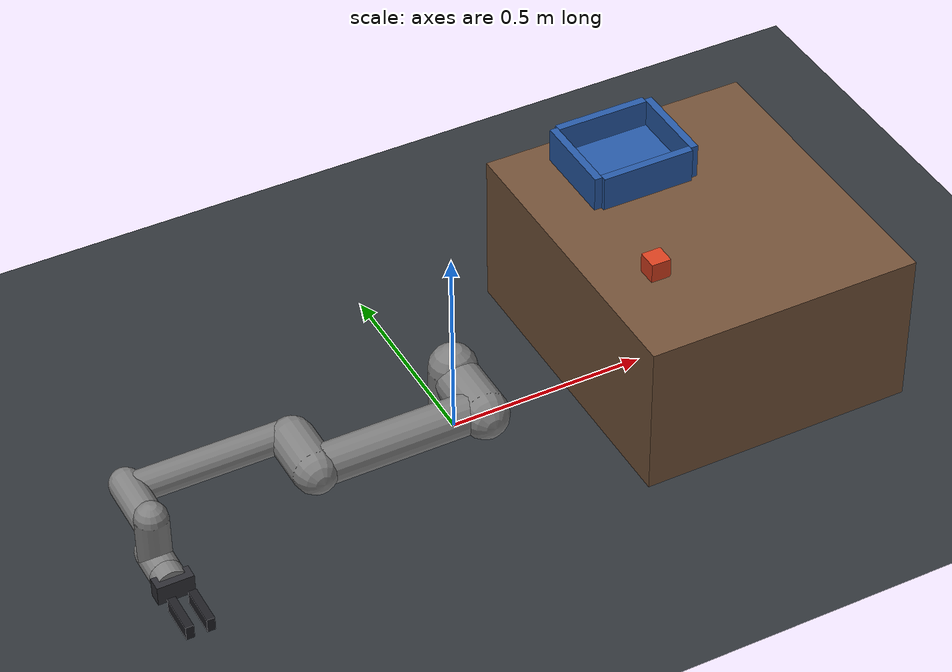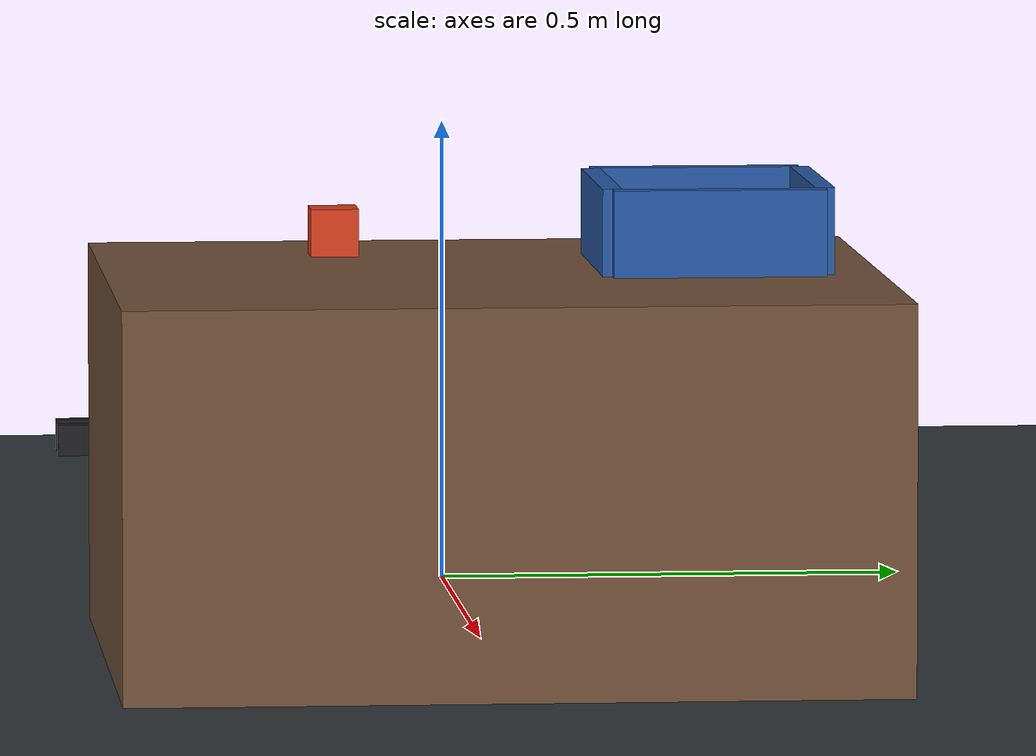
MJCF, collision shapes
<mujoco model="ACT Lab UR5e cube-to-tray task">
  <include file="ur5e.xml"/>

  <visual>
    <headlight diffuse="0.6 0.6 0.6" ambient="0.3 0.3 0.3" specular="0.1 0.1 0.1"/>
    <global azimuth="135" elevation="-25"/>
  </visual>

  <asset>
    <texture name="floor_grid" type="2d" builtin="checker" width="256" height="256"
      rgb1="0.16 0.18 0.2" rgb2="0.22 0.24 0.26"/>
    <material name="floor_material" texture="floor_grid" texrepeat="4 4" texuniform="true"/>
    <material name="table_material" rgba="0.45 0.32 0.22 1"/>
    <material name="tray_material" rgba="0.15 0.35 0.65 1"/>
    <material name="cube_material" rgba="0.85 0.25 0.12 1"/>
  </asset>

  <worldbody>
    <light name="task_light" pos="0.5 -0.2 1.6" dir="0 0 -1" directional="true"/>
    <geom name="floor" type="plane" size="2 2 0.05" material="floor_material"/>
    <geom name="table" type="box" pos="0.65 0 0.2" size="0.35 0.4 0.2"
      material="table_material" contype="1" conaffinity="1"/>

    <body name="tray" pos="0.58 0.23 0.41">
      <geom name="tray_floor" type="box" size="0.12 0.10 0.01" material="tray_material"/>
      <geom name="tray_left_wall" type="box" pos="0.13 0 0.035"
        size="0.01 0.11 0.045" material="tray_material"/>
      <geom name="tray_right_wall" type="box" pos="-0.13 0 0.035"
        size="0.01 0.11 0.045" material="tray_material"/>
      <geom name="tray_front_wall" type="box" pos="0 0.11 0.035"
        size="0.12 0.01 0.045" material="tray_material"/>
      <geom name="tray_back_wall" type="box" pos="0 -0.11 0.035"
        size="0.12 0.01 0.045" material="tray_material"/>
    </body>

    <body name="cube" pos="0.45 -0.15 0.425">
      <freejoint name="cube_free_joint"/>
      <geom name="cube_geom" type="box" size="0.025 0.025 0.025" mass="0.08"
        material="cube_material" friction="1.0 0.01 0.001"/>
    </body>

    <camera name="overview" pos="1.45 -1.25 1.25" xyaxes="0.72 0.69 0 -0.4 0.42 0.81"/>
    <camera name="policy" pos="0.95 -0.7 0.9" xyaxes="0.8 0.6 0 -0.34 0.45 0.83"/>
  </worldbody>

  <contact>
    <exclude name="wrist2_left_finger" body1="wrist_2_link" body2="left_finger"/>
    <exclude name="wrist2_right_finger" body1="wrist_2_link" body2="right_finger"/>
    <exclude name="wrist1_left_finger" body1="wrist_1_link" body2="left_finger"/>
    <exclude name="wrist1_right_finger" body1="wrist_1_link" body2="right_finger"/>
  </contact>
</mujoco>

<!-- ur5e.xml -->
<mujoco model="ur5e">
  <compiler angle="radian" meshdir="assets" autolimits="true"/>

  <!-- Vendored from Menagerie revision da76818e269b82289eba39808e2fb91d679d6994.
       ACT Lab adds the fixed timestep and educational parallel gripper below. -->
  <option integrator="implicitfast" timestep="0.002"/>

  <default>
    <default class="ur5e">
      <material specular="0.5" shininess="0.25"/>
      <joint axis="0 1 0" range="-6.28319 6.28319" armature="0.1"/>
      <general gaintype="fixed" biastype="affine" ctrlrange="-6.2831 6.2831" gainprm="2000" biasprm="0 -2000 0"
        forcerange="-150 150"/>
      <default class="size3">
        <default class="size3_limited">
          <joint range="-3.1415 3.1415"/>
          <general ctrlrange="-3.1415 3.1415"/>
        </default>
      </default>
      <default class="size1">
        <general gainprm="500" biasprm="0 -500 -150" forcerange="-28 28"/>
      </default>
      <default class="visual">
        <geom type="mesh" contype="0" conaffinity="0" group="2"/>
      </default>
      <default class="collision">
        <geom type="capsule" group="3"/>
        <default class="eef_collision">
          <geom type="cylinder"/>
        </default>
      </default>
      <site size="0.001" rgba="0.5 0.5 0.5 0.3" group="4"/>
    </default>
  </default>

  <asset>
    <material class="ur5e" name="black" rgba="0.033 0.033 0.033 1"/>
    <material class="ur5e" name="jointgray" rgba="0.278 0.278 0.278 1"/>
    <material class="ur5e" name="linkgray" rgba="0.82 0.82 0.82 1"/>
    <material class="ur5e" name="urblue" rgba="0.49 0.678 0.8 1"/>

    <mesh file="base_0.obj"/>
    <mesh file="base_1.obj"/>
    <mesh file="shoulder_0.obj"/>
    <mesh file="shoulder_1.obj"/>
    <mesh file="shoulder_2.obj"/>
    <mesh file="upperarm_0.obj"/>
    <mesh file="upperarm_1.obj"/>
    <mesh file="upperarm_2.obj"/>
    <mesh file="upperarm_3.obj"/>
    <mesh file="forearm_0.obj"/>
    <mesh file="forearm_1.obj"/>
    <mesh file="forearm_2.obj"/>
    <mesh file="forearm_3.obj"/>
    <mesh file="wrist1_0.obj"/>
    <mesh file="wrist1_1.obj"/>
    <mesh file="wrist1_2.obj"/>
    <mesh file="wrist2_0.obj"/>
    <mesh file="wrist2_1.obj"/>
    <mesh file="wrist2_2.obj"/>
    <mesh file="wrist3.obj"/>
  </asset>

  <worldbody>
    <light name="spotlight" mode="targetbodycom" target="wrist_2_link" pos="0 -1 2"/>
    <body name="base" quat="0 0 0 -1" childclass="ur5e">
      <inertial mass="4.0" pos="0 0 0" diaginertia="0.00443333156 0.00443333156 0.0072"/>
      <geom mesh="base_0" material="black" class="visual"/>
      <geom mesh="base_1" material="jointgray" class="visual"/>
      <body name="shoulder_link" pos="0 0 0.163" gravcomp="1">
        <inertial mass="3.7" pos="0 0 0" diaginertia="0.0102675 0.0102675 0.00666"/>
        <joint name="shoulder_pan_joint" class="size3" axis="0 0 1"/>
        <geom mesh="shoulder_0" material="urblue" class="visual"/>
        <geom mesh="shoulder_1" material="black" class="visual"/>
        <geom mesh="shoulder_2" material="jointgray" class="visual"/>
        <geom class="collision" size="0.06 0.06" pos="0 0 -0.04"/>
        <body name="upper_arm_link" pos="0 0.138 0" quat="1 0 1 0" gravcomp="1">
          <inertial mass="8.393" pos="0 0 0.2125" diaginertia="0.133886 0.133886 0.0151074"/>
          <joint name="shoulder_lift_joint" class="size3"/>
          <geom mesh="upperarm_0" material="linkgray" class="visual"/>
          <geom mesh="upperarm_1" material="black" class="visual"/>
          <geom mesh="upperarm_2" material="jointgray" class="visual"/>
          <geom mesh="upperarm_3" material="urblue" class="visual"/>
          <geom class="collision" pos="0 -0.04 0" quat="1 1 0 0" size="0.06 0.06"/>
          <geom class="collision" size="0.05 0.2" pos="0 0 0.2"/>
          <body name="forearm_link" pos="0 -0.131 0.425" gravcomp="1">
            <inertial mass="2.275" pos="0 0 0.196" diaginertia="0.0311796 0.0311796 0.004095"/>
            <joint name="elbow_joint" class="size3_limited"/>
            <geom mesh="forearm_0" material="urblue" class="visual"/>
            <geom mesh="forearm_1" material="linkgray" class="visual"/>
            <geom mesh="forearm_2" material="black" class="visual"/>
            <geom mesh="forearm_3" material="jointgray" class="visual"/>
            <geom class="collision" pos="0 0.08 0" quat="1 1 0 0" size="0.055 0.06"/>
            <geom class="collision" size="0.038 0.19" pos="0 0 0.2"/>
            <body name="wrist_1_link" pos="0 0 0.392" quat="1 0 1 0" gravcomp="1">
              <inertial mass="1.219" pos="0 0.127 0" diaginertia="0.0025599 0.0025599 0.0021942"/>
              <joint name="wrist_1_joint" class="size1"/>
              <geom mesh="wrist1_0" material="black" class="visual"/>
              <geom mesh="wrist1_1" material="urblue" class="visual"/>
              <geom mesh="wrist1_2" material="jointgray" class="visual"/>
              <geom class="collision" pos="0 0.05 0" quat="1 1 0 0" size="0.04 0.07"/>
              <body name="wrist_2_link" pos="0 0.127 0" gravcomp="1">
                <inertial mass="1.219" pos="0 0 0.1" diaginertia="0.0025599 0.0025599 0.0021942"/>
                <joint name="wrist_2_joint" axis="0 0 1" class="size1"/>
                <geom mesh="wrist2_0" material="black" class="visual"/>
                <geom mesh="wrist2_1" material="urblue" class="visual"/>
                <geom mesh="wrist2_2" material="jointgray" class="visual"/>
                <geom class="collision" size="0.04 0.06" pos="0 0 0.04"/>
                <geom class="collision" pos="0 0.02 0.1" quat="1 1 0 0" size="0.04 0.04"/>
                <body name="wrist_3_link" pos="0 0 0.1" gravcomp="1">
                  <inertial mass="0.1889" pos="0 0.0771683 0" quat="1 0 0 1"
                    diaginertia="0.000132134 9.90863e-05 9.90863e-05"/>
                  <joint name="wrist_3_joint" class="size1"/>
                  <geom material="linkgray" mesh="wrist3" class="visual"/>
                  <geom class="eef_collision" pos="0 0.08 0" quat="1 1 0 0" size="0.04 0.02"/>
                  <site name="attachment_site" pos="0 0.1 0" quat="-1 1 0 0"/>
                  <body name="gripper_palm" pos="0 0.1 0" quat="-0.7071068 0.7071068 0 0" gravcomp="1">
                    <geom name="gripper_palm_geom" type="box" size="0.045 0.025 0.018"
                      mass="0.25" rgba="0.18 0.18 0.2 1"/>
                    <site name="end_effector" pos="0 0 0.11" quat="1 0 0 0"/>
                    <body name="left_finger" pos="0.025 0 0.065" gravcomp="1">
                      <joint name="left_finger_joint" type="slide" axis="1 0 0"
                        range="0 0.025" damping="2"/>
                      <geom name="left_finger_pad" type="box" pos="0 0 0.035"
                        size="0.01 0.018 0.05" mass="0.005" friction="1.2 0.01 0.001"
                        rgba="0.12 0.12 0.14 1"/>
                    </body>
                    <body name="right_finger" pos="-0.025 0 0.065" gravcomp="1">
                      <joint name="right_finger_joint" type="slide" axis="-1 0 0"
                        range="0 0.025" damping="2"/>
                      <geom name="right_finger_pad" type="box" pos="0 0 0.035"
                        size="0.01 0.018 0.05" mass="0.005" friction="1.2 0.01 0.001"
                        rgba="0.12 0.12 0.14 1"/>
                    </body>
                  </body>
                </body>
              </body>
            </body>
          </body>
        </body>
      </body>
    </body>
  </worldbody>

  <actuator>
    <general class="size3" name="shoulder_pan" joint="shoulder_pan_joint"/>
    <general class="size3" name="shoulder_lift" joint="shoulder_lift_joint"/>
    <general class="size3_limited" name="elbow" joint="elbow_joint"/>
    <general class="size1" name="wrist_1" joint="wrist_1_joint"/>
    <general class="size1" name="wrist_2" joint="wrist_2_joint"/>
    <general class="size1" name="wrist_3" joint="wrist_3_joint"/>
    <velocity name="shoulder_pan_velocity" joint="shoulder_pan_joint" kv="600" ctrlrange="-1 1"/>
    <velocity name="shoulder_lift_velocity" joint="shoulder_lift_joint" kv="600" ctrlrange="-1 1"/>
    <velocity name="elbow_velocity" joint="elbow_joint" kv="600" ctrlrange="-1 1"/>
    <velocity name="wrist_1_velocity" joint="wrist_1_joint" kv="600" ctrlrange="-1 1"/>
    <velocity name="wrist_2_velocity" joint="wrist_2_joint" kv="600" ctrlrange="-1 1"/>
    <velocity name="wrist_3_velocity" joint="wrist_3_joint" kv="600" ctrlrange="-1 1"/>
    <position name="gripper" joint="left_finger_joint" kp="800"
      ctrlrange="0 0.025" forcerange="-20 20"/>
  </actuator>

  <equality>
    <joint name="coupled_fingers" joint1="left_finger_joint"
      joint2="right_finger_joint" polycoef="0 1 0 0 0"/>
  </equality>

  <keyframe>
    <key name="home" qpos="-1.5708 -1.5708 1.5708 -1.5708 -1.5708 0 0 0"
      ctrl="-1.5708 -1.5708 1.5708 -1.5708 -1.5708 0 0"/>
  </keyframe>
</mujoco>
